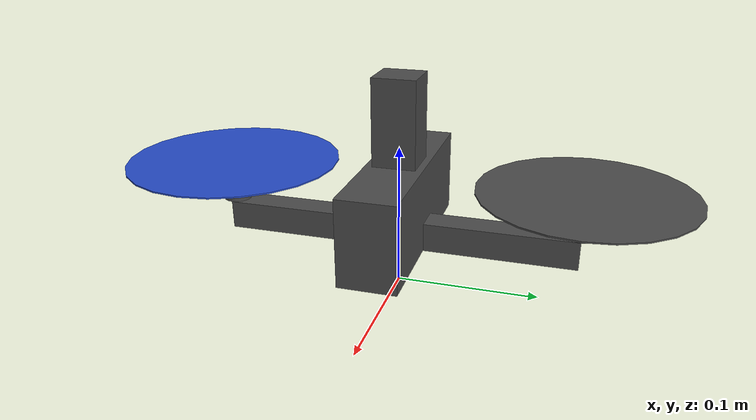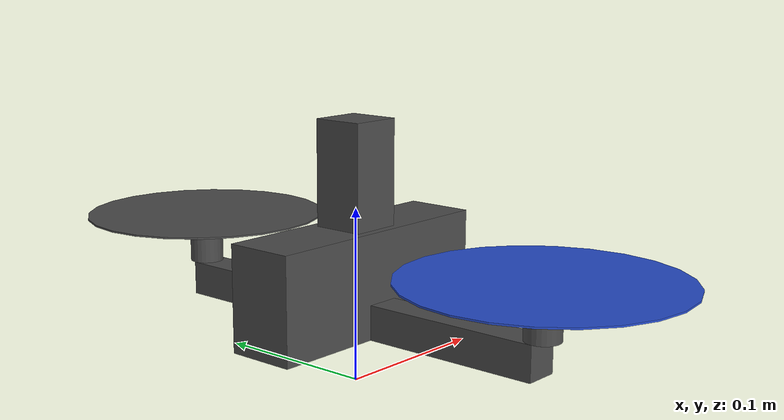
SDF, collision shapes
<?xml version="1.0"?>

<sdf version='1.5'>
  <model name='bicopter'>
    <pose>0 0 0 0 0 0</pose>
    <link name='test_stand_link'>
      <pose>0 0 0.05 0 0 0</pose>
      <inertial>
        <pose>0 0 0 0 0 0</pose>
        <mass>100</mass>
        <inertia>
          <ixx>1.97563</ixx>
          <ixy>0</ixy>
          <ixz>0</ixz>
          <iyy>1.458929</iyy>
          <iyz>0</iyz>
          <izz>1.477</izz>
        </inertia>
      </inertial>
      <collision name='test_stand_link_collision'>
        <pose>0 0 0.05 0 0 0</pose>
        <geometry>
          <box>
            <size>0.03 0.03 0.1</size>
          </box>
        </geometry>
      </collision>
      <visual name='test_stand_link_visual'>
        <pose>0 0 0.05 0 0 0</pose>
        <geometry>
          <box>
            <size>0.03 0.03 0.1</size>
          </box>
        </geometry>
        <material>
          <script>
            <name>Gazebo/DarkGrey</name>
            <uri>__default__</uri>
          </script>
        </material>
      </visual>
      <gravity>1</gravity>
      <velocity_decay/>
      <self_collide>0</self_collide>
    </link>

    <joint name='stand/bicopter' type='ball'>
      <child>base_link</child>
      <parent>test_stand_link</parent>
    </joint>

    <link name='base_link'>
      <pose>0 0 0.03 0 0 0</pose>
      <inertial>
        <pose>0 0 0 0 0 0</pose>
        <mass>0.7</mass>
        <inertia>
          <ixx>0.0197563</ixx>
          <ixy>0</ixy>
          <ixz>0</ixz>
          <iyy>0.01458929</iyy>
          <iyz>0</iyz>
          <izz>0.01477</izz>
        </inertia>
      </inertial>
      <collision name='base_link_collision'>
        <pose>0 0 0.03 0 0 0</pose>
        <geometry>
          <box>
            <size>0.15 0.04 0.06</size>
          </box>
        </geometry>
        <surface>
          <contact>
            <ode>
              <max_vel>10</max_vel>
              <min_depth>0.01</min_depth>
            </ode>
          </contact>
        </surface>
      </collision>
      <visual name='base_link_visual'>
        <pose>0 0 0.03 0 0 0</pose>
        <geometry>
          <box>
            <size>0.15 0.04 0.06</size>
          </box>
        </geometry>
        <material>
          <script>
            <name>Gazebo/DarkGrey</name>
            <uri>__default__</uri>
          </script>
        </material>
      </visual>
      <collision name='motor_column_collision'>
        <pose>0 0 0.01 0 0 0</pose>
        <geometry>
          <box>
            <size>0.02 0.25 0.02</size>
          </box>
        </geometry>
        <surface>
          <contact>
            <ode>
              <max_vel>10</max_vel>
              <min_depth>0.01</min_depth>
            </ode>
          </contact>
        </surface>
      </collision>
      <visual name='left_motor_column'>
        <pose>0 0.0625 0.01 0 0 0</pose>
        <geometry>
          <box>
            <size>0.02 0.125 0.02</size>
          </box>
        </geometry>
        <material>
          <script>
            <name>Gazebo/DarkGrey</name>
            <uri>__default__</uri>
          </script>
        </material>
      </visual>
      <visual name='right_motor_column'>
        <pose>0 -0.0625 0.01 0 0 0</pose>
        <geometry>
          <box>
            <size>0.02 0.125 0.02</size>
          </box>
        </geometry>
        <material>
          <script>
            <name>Gazebo/DarkGrey</name>
            <uri>__default__</uri>
          </script>
        </material>
      </visual>
      <gravity>1</gravity>
      <velocity_decay/>
      <self_collide>0</self_collide>
    </link>
    <link name='bicopter/imu_link'>
      <pose>0 0 0.06 0 0 0</pose>
      <inertial>
        <pose>0 0 0 0 0 0</pose>
        <mass>0.015</mass>
        <inertia>
          <ixx>1e-05</ixx>
          <ixy>0</ixy>
          <ixz>0</ixz>
          <iyy>1e-05</iyy>
          <iyz>0</iyz>
          <izz>1e-05</izz>
        </inertia>
      </inertial>
    </link>
    <joint name='bicopter/imu_joint' type='revolute'>
      <child>bicopter/imu_link</child>
      <parent>base_link</parent>
      <axis>
        <xyz>1 0 0</xyz>
        <limit>
          <lower>0</lower>
          <upper>0</upper>
          <effort>0</effort>
          <velocity>0</velocity>
        </limit>
        <dynamics>
          <spring_reference>0</spring_reference>
          <spring_stiffness>0</spring_stiffness>
        </dynamics>
        <use_parent_model_frame>1</use_parent_model_frame>
      </axis>
    </joint>

    <link name='motor_0'>
      <pose>0 -0.125 0.06 0 0 0</pose>
      <inertial>
        <pose>0 0 0 0 0 0</pose>
        <mass>0.005</mass>
        <inertia>
          <ixx>0.000166704</ixx>
          <ixy>0</ixy>
          <ixz>0</ixz>
          <iyy>0.000166704</iyy>
          <iyz>0</iyz>
          <izz>0.000167604</izz>
        </inertia>
      </inertial>
      <collision name='motor_0_collision'>
        <pose>0 0 0 0 0 0</pose>
        <geometry>
          <cylinder>
            <length>0.02</length>
            <radius>0.01</radius>
          </cylinder>
        </geometry>
        <surface>
          <contact>
            <ode/>
          </contact>
          <friction>
            <ode/>
          </friction>
        </surface>
      </collision>
      <visual name='motor_0_visual'>
        <pose>0 0 0 0 0 0</pose>
        <geometry>
          <cylinder>
            <length>0.02</length>
            <radius>0.01</radius>
          </cylinder>
        </geometry>
        <material>
          <script>
            <name>Gazebo/DarkGrey</name>
            <uri>__default__</uri>
          </script>
        </material>
      </visual>
      <gravity>1</gravity>
      <velocity_decay/>
      <self_collide>0</self_collide>
    </link>

    <link name='motor_0_intermediate'>
      <pose>0 -0.125 0.05 0 0 0</pose>
      <inertial>
        <pose>0 0 0 0 0 0</pose>
        <mass>0.001</mass>
        <inertia>
          <ixx>0.000166704</ixx>
          <ixy>0</ixy>
          <ixz>0</ixz>
          <iyy>0.000166704</iyy>
          <iyz>0</iyz>
          <izz>0.000167604</izz>
        </inertia>
      </inertial>
      <gravity>0</gravity>
      <velocity_decay/>
      <self_collide>0</self_collide>
    </link>

    <joint name='motor_0_joint_a' type='revolute'>
      <child>motor_0_intermediate</child>
      <parent>base_link</parent>
      <axis>
        <xyz>0 1 0</xyz>
        <limit>
          <lower>-0.75</lower>
          <upper>0.75</upper>

        </limit>
        <dynamics>
          <spring_reference>0</spring_reference>
          <spring_stiffness>0</spring_stiffness>
          <damping>0</damping>
        </dynamics>
        <use_parent_model_frame>1</use_parent_model_frame>
      </axis>
      <physics>
        <ode>
          <suspension>
            <erp>0.05</erp>
          </suspension>
        </ode>
      </physics>
    </joint>
    <joint name='motor_0_joint_b' type='revolute'>
      <child>motor_0</child>
      <parent>motor_0_intermediate</parent>
      <axis>
        <xyz>1 0 0</xyz>
        <limit>
          <lower>-0.75</lower>
          <upper>0.75</upper>
        </limit>
        <dynamics>
          <spring_reference>0</spring_reference>
          <spring_stiffness>0</spring_stiffness>
          <damping>0</damping>
        </dynamics>
        <use_parent_model_frame>1</use_parent_model_frame>
      </axis>
      <physics>
        <ode>
          <suspension>
            <erp>0.05</erp>
          </suspension>
        </ode>
      </physics>
    </joint>

    <link name='rotor_0'>
      <pose>0 -0.125 0.08 0 0 0</pose>
      <inertial>
        <pose>0 0 0 0 0 0</pose>
        <mass>0.005</mass>
        <inertia>
          <ixx>9.75e-07</ixx>
          <ixy>0</ixy>
          <ixz>0</ixz>
          <iyy>0.000166704</iyy>
          <iyz>0</iyz>
          <izz>0.000167604</izz>
        </inertia>
      </inertial>
      <collision name='rotor_0_collision'>
        <pose>0 0 0 0 0 0</pose>
        <geometry>
          <cylinder>
            <length>0.001</length>
            <radius>0.0762</radius>
          </cylinder>
        </geometry>
        <surface>
          <contact>
            <ode/>
          </contact>
          <friction>
            <ode/>
          </friction>
        </surface>
      </collision>
      <visual name='rotor_0_visual'>
        <pose>0 0 0 0 0 0</pose>
        <geometry>
          <mesh>
            <scale>0.38 0.38 0.38</scale>
            <uri>model://tiltrotor/meshes/iris_prop_ccw.dae</uri>
          </mesh>
        </geometry>
        <material>
          <script>
            <name>Gazebo/Blue</name>
            <uri>__default__</uri>
          </script>
        </material>
      </visual>
      <gravity>1</gravity>
      <velocity_decay/>
      <self_collide>0</self_collide>
    </link>
    <joint name='rotor_0_joint' type='revolute'>
      <child>rotor_0</child>
      <parent>motor_0</parent>
      <axis>
        <xyz>0 0 1</xyz>
        <limit>
          <lower>-1e+16</lower>
          <upper>1e+16</upper>
        </limit>
        <dynamics>
          <spring_reference>0</spring_reference>
          <spring_stiffness>0</spring_stiffness>
        </dynamics>
        <use_parent_model_frame>1</use_parent_model_frame>
      </axis>
    </joint>

    <link name='motor_1'>
      <pose>0 0.125 0.06 0 0 0</pose>
      <inertial>
        <pose>0 0 0 0 0 0</pose>
        <mass>0.005</mass>
        <inertia>
          <ixx>0.000166704</ixx>
          <ixy>0</ixy>
          <ixz>0</ixz>
          <iyy>0.000166704</iyy>
          <iyz>0</iyz>
          <izz>0.000167604</izz>
        </inertia>
      </inertial>
      <collision name='motor_1_collision'>
        <pose>0 0 0 0 0 0</pose>
        <geometry>
          <cylinder>
            <length>0.02</length>
            <radius>0.01</radius>
          </cylinder>
        </geometry>
        <surface>
          <contact>
            <ode/>
          </contact>
          <friction>
            <ode/>
          </friction>
        </surface>
      </collision>
      <visual name='motor_1_visual'>
        <pose>0 0 0 0 0 0</pose>
        <geometry>
          <cylinder>
            <length>0.02</length>
            <radius>0.01</radius>
          </cylinder>
        </geometry>
        <material>
          <script>
            <name>Gazebo/DarkGrey</name>
            <uri>__default__</uri>
          </script>
        </material>
      </visual>
      <gravity>1</gravity>
      <velocity_decay/>
      <self_collide>0</self_collide>
    </link>

    <link name='motor_1_intermediate'>
      <pose>0 0.125 0.05 0 0 0</pose>
      <inertial>
        <pose>0 0 0 0 0 0</pose>
        <mass>0.001</mass>
        <inertia>
          <ixx>0.000166704</ixx>
          <ixy>0</ixy>
          <ixz>0</ixz>
          <iyy>0.000166704</iyy>
          <iyz>0</iyz>
          <izz>0.000167604</izz>
        </inertia>
      </inertial>
      <gravity>0</gravity>
      <velocity_decay/>
      <self_collide>0</self_collide>
    </link>

    <joint name='motor_1_joint_a' type='revolute'>
      <child>motor_1_intermediate</child>
      <parent>base_link</parent>
      <axis>
        <xyz>0 1 0</xyz>
        <limit>
          <lower>-0.75</lower>
          <upper>0.75</upper>
        </limit>
        <dynamics>
          <spring_reference>0</spring_reference>
          <spring_stiffness>0</spring_stiffness>
          <damping>0</damping>
        </dynamics>
        <use_parent_model_frame>1</use_parent_model_frame>
      </axis>
      <physics>
        <ode>
          <suspension>
            <erp>0.05</erp>
          </suspension>
        </ode>
      </physics>
    </joint>
    <joint name='motor_1_joint_b' type='revolute'>
      <child>motor_1</child>
      <parent>motor_1_intermediate</parent>
      <axis>
        <xyz>1 0 0</xyz>
        <limit>
          <lower>-0.75</lower>
          <upper>0.75</upper>
        </limit>
        <dynamics>
          <spring_reference>0</spring_reference>
          <spring_stiffness>0</spring_stiffness>
          <damping>0</damping>
        </dynamics>
        <use_parent_model_frame>1</use_parent_model_frame>
      </axis>
      <physics>
        <ode>
          <suspension>
            <erp>0.05</erp>
          </suspension>
        </ode>
      </physics>
    </joint>

    <link name='rotor_1'>
      <pose>0 0.125 0.08 0 0 0</pose>
      <inertial>
        <pose>0 0 0 0 0 0</pose>
        <mass>0.005</mass>
        <inertia>
          <ixx>9.75e-07</ixx>
          <ixy>0</ixy>
          <ixz>0</ixz>
          <iyy>0.000166704</iyy>
          <iyz>0</iyz>
          <izz>0.000167604</izz>
        </inertia>
      </inertial>
      <collision name='rotor_1_collision'>
        <pose>0 0 0 0 0 0</pose>
        <geometry>
          <cylinder>
            <length>0.001</length>
            <radius>0.072</radius>
          </cylinder>
        </geometry>
        <surface>
          <contact>
            <ode/>
          </contact>
          <friction>
            <ode/>
          </friction>
        </surface>
      </collision>
      <visual name='rotor_1_visual'>
        <pose>0 0 0 0 0 0</pose>
        <geometry>
          <mesh>
            <scale>0.38 0.38 0.38</scale>
            <uri>model://tiltrotor/meshes/iris_prop_ccw.dae</uri>
          </mesh>
        </geometry>
        <material>
          <script>
            <name>Gazebo/DarkGrey</name>
            <uri>__default__</uri>
          </script>
        </material>
      </visual>
      <gravity>1</gravity>
      <velocity_decay/>
      <self_collide>0</self_collide>
    </link>
    <joint name='rotor_1_joint' type='revolute'>
      <child>rotor_1</child>
      <parent>motor_1</parent>
      <axis>
        <xyz>0 0 1</xyz>
        <limit>
          <lower>-1e+16</lower>
          <upper>1e+16</upper>
        </limit>
        <dynamics>
          <spring_reference>0</spring_reference>
          <spring_stiffness>0</spring_stiffness>
        </dynamics>
        <use_parent_model_frame>1</use_parent_model_frame>
      </axis>
    </joint>

    <plugin name='right_motor_model' filename='libgazebo_motor_model.so'>
      <robotNamespace></robotNamespace>
      <jointName>rotor_0_joint</jointName>
      <linkName>rotor_0</linkName>
      <turningDirection>cw</turningDirection>
      <timeConstantUp>0.0125</timeConstantUp>
      <timeConstantDown>0.025</timeConstantDown>
      <maxRotVelocity>1500</maxRotVelocity>
      <motorConstant>5e-06</motorConstant>
      <momentConstant>0.06</momentConstant>
      <commandSubTopic>/gazebo/command/motor_speed</commandSubTopic>
      <motorNumber>0</motorNumber>
      <rotorDragCoefficient>0.00000806428</rotorDragCoefficient>
      <rollingMomentCoefficient>0</rollingMomentCoefficient>
      <motorSpeedPubTopic>/motor_speed/0</motorSpeedPubTopic>
      <rotorVelocitySlowdownSim>20</rotorVelocitySlowdownSim>
    </plugin>
    <plugin name='left_motor_model' filename='libgazebo_motor_model.so'>
      <robotNamespace></robotNamespace>
      <jointName>rotor_1_joint</jointName>
      <linkName>rotor_1</linkName>
      <turningDirection>ccw</turningDirection>
      <timeConstantUp>0.0125</timeConstantUp>
      <timeConstantDown>0.025</timeConstantDown>
      <maxRotVelocity>1500</maxRotVelocity>
      <motorConstant>5e-06</motorConstant>
      <momentConstant>0.06</momentConstant>
      <commandSubTopic>/gazebo/command/motor_speed</commandSubTopic>
      <motorNumber>1</motorNumber>
      <rotorDragCoefficient>0.00000806428</rotorDragCoefficient>
      <rollingMomentCoefficient>0</rollingMomentCoefficient>
      <motorSpeedPubTopic>/motor_speed/1</motorSpeedPubTopic>
      <rotorVelocitySlowdownSim>20</rotorVelocitySlowdownSim>
    </plugin>

    <plugin name='gazebo_imu_plugin' filename='libgazebo_imu_plugin.so'>
      <robotNamespace></robotNamespace>
      <linkName>bicopter/imu_link</linkName>
      <imuTopic>/imu</imuTopic>
      <gyroscopeNoiseDensity>0.0003394</gyroscopeNoiseDensity>
      <gyroscopeRandomWalk>3.8785e-05</gyroscopeRandomWalk>
      <gyroscopeBiasCorrelationTime>1000.0</gyroscopeBiasCorrelationTime>
      <gyroscopeTurnOnBiasSigma>0.0087</gyroscopeTurnOnBiasSigma>
      <accelerometerNoiseDensity>0.004</accelerometerNoiseDensity>
      <accelerometerRandomWalk>0.006</accelerometerRandomWalk>
      <accelerometerBiasCorrelationTime>300.0</accelerometerBiasCorrelationTime>
      <accelerometerTurnOnBiasSigma>0.196</accelerometerTurnOnBiasSigma>
    </plugin>
    <plugin name="gps_plugin" filename="libgazebo_gps_plugin.so">
        <robotNamespace></robotNamespace>
        <gpsNoise>true</gpsNoise>
    </plugin>
    <plugin name='magnetometer_plugin' filename='libgazebo_magnetometer_plugin.so'>
      <robotNamespace/>
      <pubRate>20</pubRate>
      <noiseDensity>0.0004</noiseDensity>
      <randomWalk>6.4e-06</randomWalk>
      <biasCorrelationTime>600</biasCorrelationTime>
      <magTopic>/mag</magTopic>
    </plugin>
    <plugin name='barometer_plugin' filename='libgazebo_barometer_plugin.so'>
      <robotNamespace/>
      <pubRate>10</pubRate>
      <baroTopic>/baro</baroTopic>
    </plugin>
    <plugin name='mavlink_interface' filename='libgazebo_mavlink_interface.so'>
      <robotNamespace></robotNamespace>
      <imuSubTopic>/imu</imuSubTopic>
      <gpsSubTopic>/gps</gpsSubTopic>
      <magSubTopic>/mag</magSubTopic>
      <baroSubTopic>/baro</baroSubTopic>
      <mavlink_addr>INADDR_ANY</mavlink_addr>
      <mavlink_udp_port>14560</mavlink_udp_port>
      <serialEnabled>false</serialEnabled>
      <serialDevice>/dev/ttyACM0</serialDevice>
      <baudRate>921600</baudRate>
      <qgc_addr>INADDR_ANY</qgc_addr>
      <qgc_udp_port>14550</qgc_udp_port>
      <sdk_addr>INADDR_ANY</sdk_addr>
      <sdk_udp_port>14540</sdk_udp_port>
      <hil_mode>false</hil_mode>
      <hil_state_level>false</hil_state_level>
      <enable_lockstep>true</enable_lockstep>
      <use_tcp>true</use_tcp>
      <motorSpeedCommandPubTopic>/gazebo/command/motor_speed</motorSpeedCommandPubTopic>
      <control_channels>
        <channel name="rotor0">
          <input_index>0</input_index>
          <input_offset>0</input_offset>
          <input_scaling>1500</input_scaling>
          <zero_position_disarmed>0</zero_position_disarmed>
          <zero_position_armed>0</zero_position_armed>
          <joint_control_type>velocity</joint_control_type>
          <joint_name>rotor_0_joint</joint_name>
        </channel>
        <channel name="rotor1">
          <input_index>1</input_index>
          <input_offset>0</input_offset>
          <input_scaling>1500</input_scaling>
          <zero_position_disarmed>0</zero_position_disarmed>
          <zero_position_armed>0</zero_position_armed>
          <joint_control_type>velocity</joint_control_type>
          <joint_name>rotor_1_joint</joint_name>
        </channel>

        <channel name="motor0_tilt_a">
          <input_index>4</input_index>
          <input_offset>0</input_offset>
          <input_scaling>1</input_scaling>
          <zero_position_disarmed>0</zero_position_disarmed>
          <zero_position_armed>0</zero_position_armed>
          <joint_control_type>position</joint_control_type>
          <joint_name>motor_0_joint_a</joint_name>
           <joint_control_pid>
            <p>20</p>
            <i>0</i>
            <d>0</d>
            <iMax>0.0</iMax>
            <iMin>0.0</iMin>
            <cmdMax>2</cmdMax>
            <cmdMin>-2</cmdMin>
          </joint_control_pid>
        </channel>
        <channel name="motor0_tilt_b">
          <input_index>5</input_index>
          <input_offset>0</input_offset>
          <input_scaling>1</input_scaling>
          <zero_position_disarmed>0</zero_position_disarmed>
          <zero_position_armed>0</zero_position_armed>
          <joint_control_type>position</joint_control_type>
          <joint_name>motor_0_joint_b</joint_name>
           <joint_control_pid>
            <p>20</p>
            <i>0</i>
            <d>0</d>
            <iMax>0.0</iMax>
            <iMin>0.0</iMin>
            <cmdMax>2</cmdMax>
            <cmdMin>-2</cmdMin>
          </joint_control_pid>
        </channel>
        <channel name="motor1_tilt_a">
          <input_index>6</input_index>
          <input_offset>0</input_offset>
          <input_scaling>1</input_scaling>
          <zero_position_disarmed>0</zero_position_disarmed>
          <zero_position_armed>0</zero_position_armed>
          <joint_control_type>position</joint_control_type>
          <joint_name>motor_1_joint_a</joint_name>
           <joint_control_pid>
            <p>20</p>
            <i>0</i>
            <d>0</d>
            <iMax>0.0</iMax>
            <iMin>0.0</iMin>
            <cmdMax>2</cmdMax>
            <cmdMin>-2</cmdMin>
          </joint_control_pid>
        </channel>
        <channel name="motor1_tilt_b">
          <input_index>7</input_index>
          <input_offset>0</input_offset>
          <input_scaling>1</input_scaling>
          <zero_position_disarmed>0</zero_position_disarmed>
          <zero_position_armed>0</zero_position_armed>
          <joint_control_type>position</joint_control_type>
          <joint_name>motor_1_joint_b</joint_name>
           <joint_control_pid>
            <p>20</p>
            <i>0</i>
            <d>0</d>
            <iMax>0.0</iMax>
            <iMin>0.0</iMin>
            <cmdMax>2</cmdMax>
            <cmdMin>-2</cmdMin>
          </joint_control_pid>
        </channel>
      </control_channels>
    </plugin>
    <static>0</static>
  </model>
</sdf>
